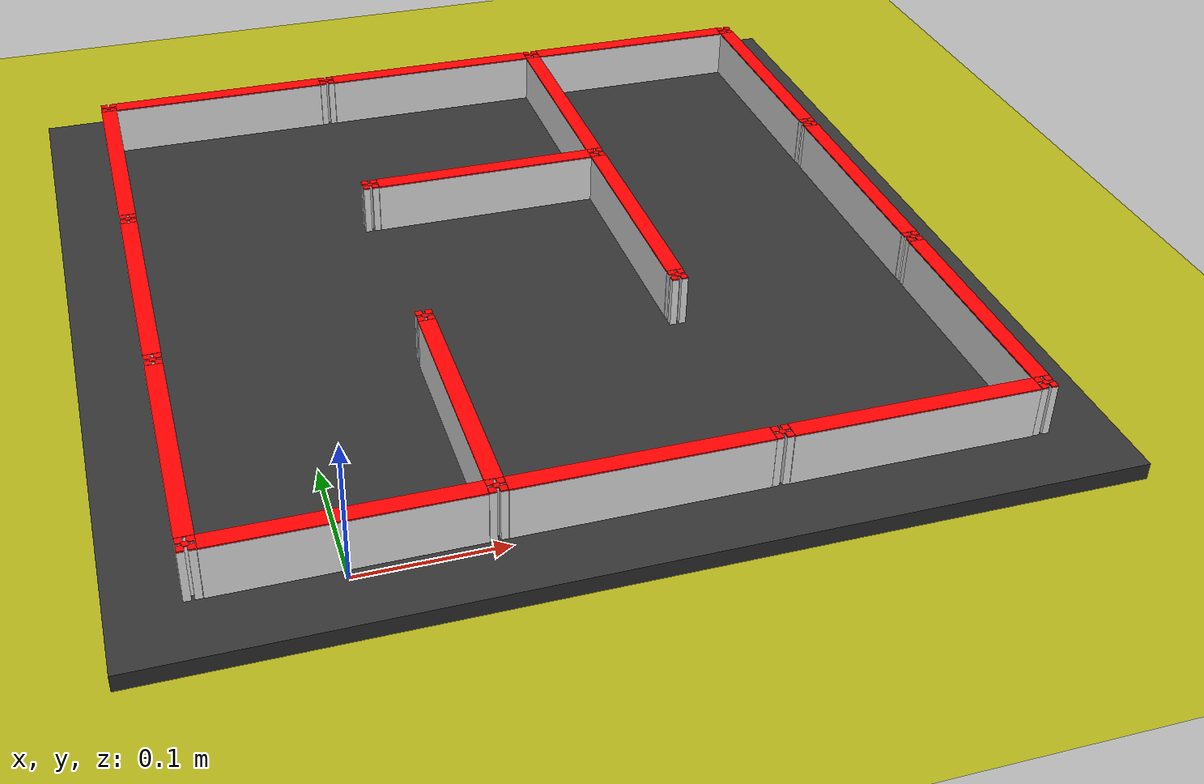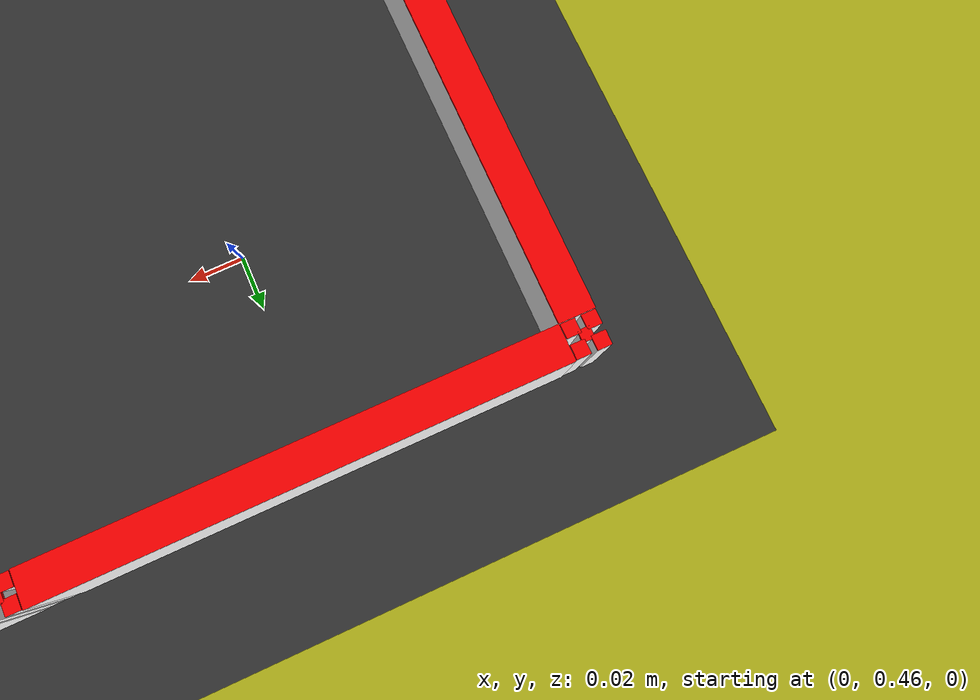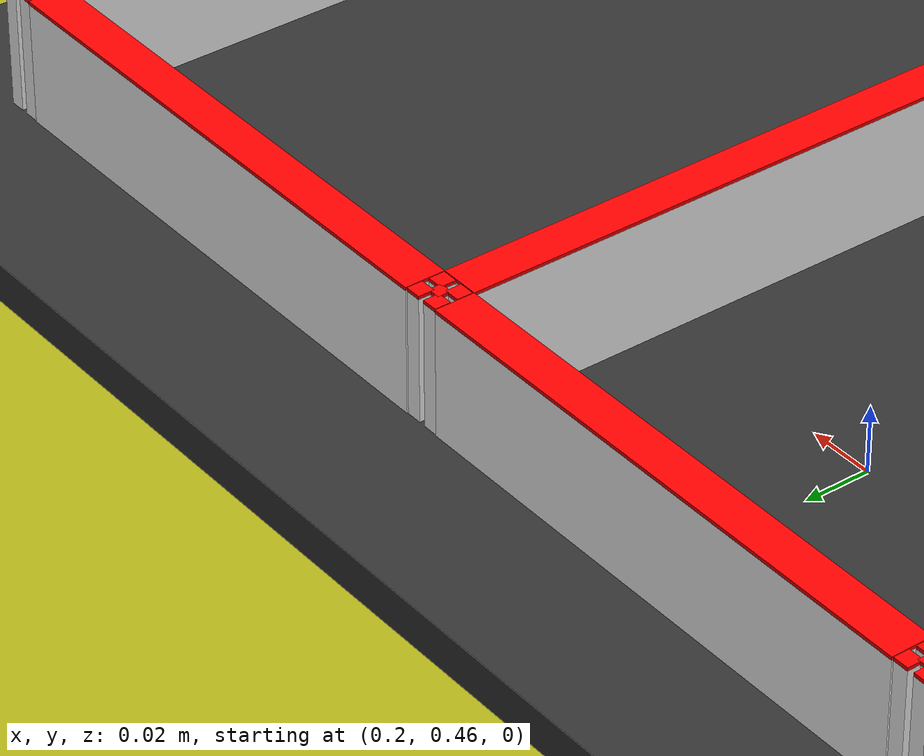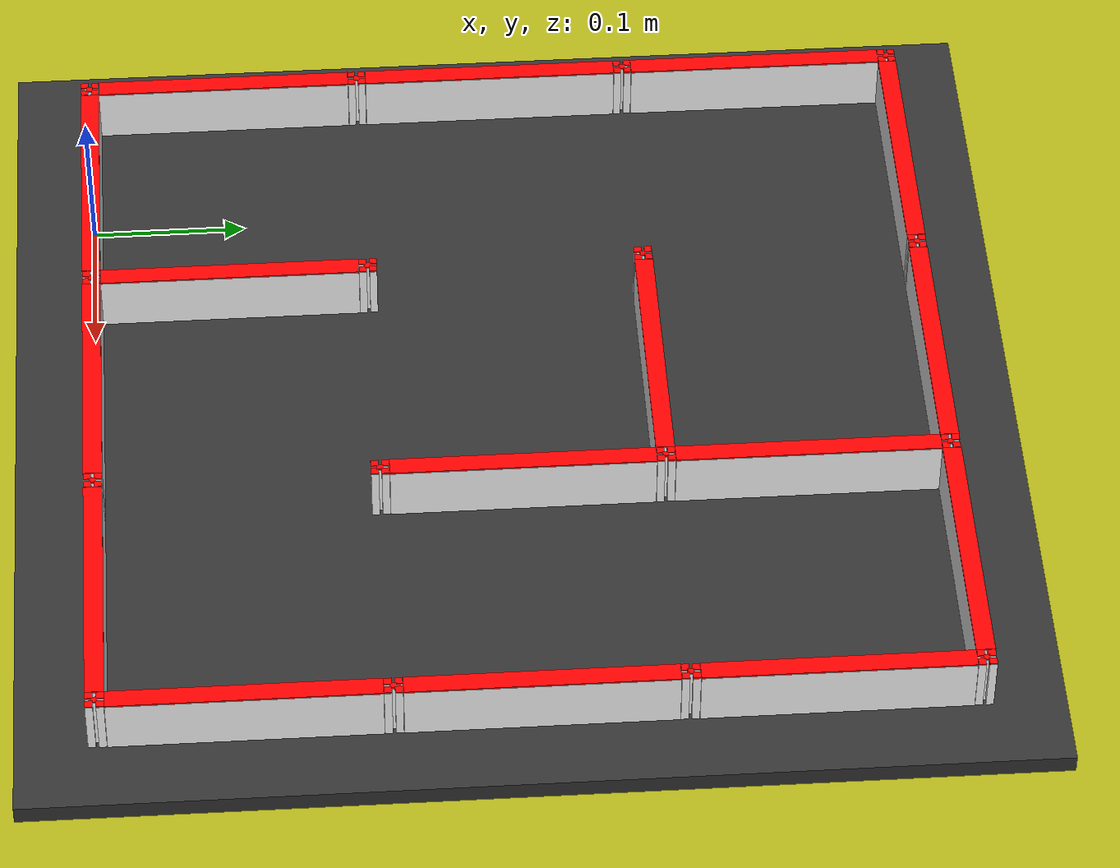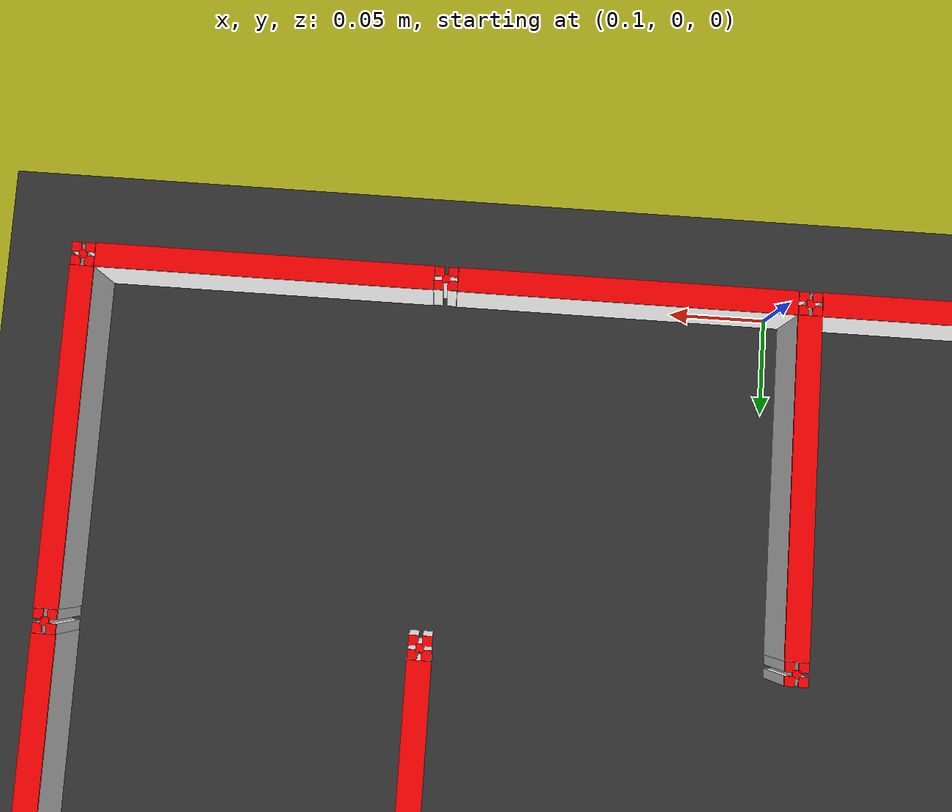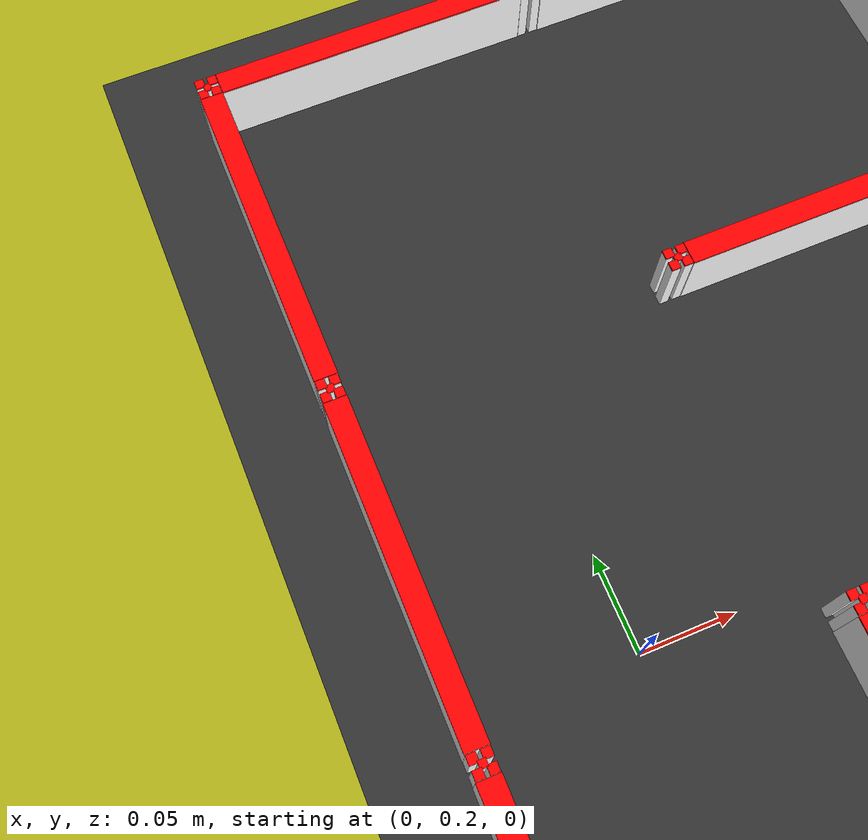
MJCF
<mujoco>
    <worldbody>
        <light diffuse=".5 .5 .5" pos="0 0 10" dir="0 0 -1"/>
        <geom type="plane" size="0 0 0.18" rgba="0.7 0.7 0.1 1"/>
        <!--ベース板-->
        <body name="base_plate" pos="0.18 0.27 0.006">
            <geom type="box" mass="0.1" size="0.321 0.321 0.006" rgba="0.2 0.2 0.2 1"/>
        </body>
        <body name="wall1" pos="0 0 0.025"  euler="0 0 0">
            <body pos="0 0 -0.0005">
                <geom type="box" mass="0.1" size="0.084 0.006 0.0245" rgba="1 1 1 1"/>
            </body>
            <body pos="0 0 0.0245">
                <geom type="box" mass="0.001" size="0.084 0.006 0.0005" rgba="1 0 0 1"/>
            </body>
        </body>
        <body name="wall2" pos="0.18 0 0.025" euler="0 0 0">
            <body pos="0 0 -0.0005">
                <geom type="box" mass="0.1" size="0.084 0.006 0.0245" rgba="1 1 1 1"/>
            </body>
            <body pos="0 0 0.0245">
                <geom type="box" mass="0.001" size="0.084 0.006 0.0005" rgba="1 0 0 1"/>
            </body>
        </body>
        <body name="wall3" pos="0.36 0 0.025" euler="0 0 0">
            <body pos="0 0 -0.0005">
                <geom type="box" mass="0.1" size="0.084 0.006 0.0245" rgba="1 1 1 1"/>
            </body>
            <body pos="0 0 0.0245">
                <geom type="box" mass="0.001" size="0.084 0.006 0.0005" rgba="1 0 0 1"/>
            </body>
        </body>
        <body name="wall4" pos="0.45 0.09 0.025"  euler="0 0 90">
            <body pos="0 0 -0.0005">
                <geom type="box" mass="0.1" size="0.084 0.006 0.0245" rgba="1 1 1 1"/>
            </body>
            <body pos="0 0 0.0245">
                <geom type="box" mass="0.001" size="0.084 0.006 0.0005" rgba="1 0 0 1"/>
            </body>
        </body>
        <body name="wall5" pos="0.45 0.27 0.025" euler="0 0 90">
            <body pos="0 0 -0.0005">
                <geom type="box" mass="0.1" size="0.084 0.006 0.0245" rgba="1 1 1 1"/>
            </body>
            <body pos="0 0 0.0245">
                <geom type="box" mass="0.001" size="0.084 0.006 0.0005" rgba="1 0 0 1"/>
            </body>
        </body>
        <body name="wall6" pos="0.45 0.45 0.025" euler="0 0 90">
            <body pos="0 0 -0.0005">
                <geom type="box" mass="0.1" size="0.084 0.006 0.0245" rgba="1 1 1 1"/>
            </body>
            <body pos="0 0 0.0245">
                <geom type="box" mass="0.001" size="0.084 0.006 0.0005" rgba="1 0 0 1"/>
            </body>
        </body>
        <body name="wall7" pos="-0.090 0.09 0.025"  euler="0 0 90">
            <body pos="0 0 -0.0005">
                <geom type="box" mass="0.1" size="0.084 0.006 0.0245" rgba="1 1 1 1"/>
            </body>
            <body pos="0 0 0.0245">
                <geom type="box" mass="0.001" size="0.084 0.006 0.0005" rgba="1 0 0 1"/>
            </body>
        </body>
        <body name="wall8" pos="-0.090 0.27 0.025" euler="0 0 90">
            <body pos="0 0 -0.0005">
                <geom type="box" mass="0.1" size="0.084 0.006 0.0245" rgba="1 1 1 1"/>
            </body>
            <body pos="0 0 0.0245">
                <geom type="box" mass="0.001" size="0.084 0.006 0.0005" rgba="1 0 0 1"/>
            </body>
        </body>
        <body name="wall9" pos="-0.090 0.45 0.025" euler="0 0 90">
            <body pos="0 0 -0.0005">
                <geom type="box" mass="0.1" size="0.084 0.006 0.0245" rgba="1 1 1 1"/>
            </body>
            <body pos="0 0 0.0245">
                <geom type="box" mass="0.001" size="0.084 0.006 0.0005" rgba="1 0 0 1"/>
            </body>
        </body>
        <body name="wall10" pos="0 0.54 0.025"  euler="0 0 0">
            <body pos="0 0 -0.0005">
                <geom type="box" mass="0.1" size="0.084 0.006 0.0245" rgba="1 1 1 1"/>
            </body>
            <body pos="0 0 0.0245">
                <geom type="box" mass="0.001" size="0.084 0.006 0.0005" rgba="1 0 0 1"/>
            </body>
        </body>
        <body name="wall11" pos="0.18 0.54 0.025" euler="0 0 0">
            <body pos="0 0 -0.0005">
                <geom type="box" mass="0.1" size="0.084 0.006 0.0245" rgba="1 1 1 1"/>
            </body>
            <body pos="0 0 0.0245">
                <geom type="box" mass="0.001" size="0.084 0.006 0.0005" rgba="1 0 0 1"/>
            </body>
        </body>
        <body name="wall12" pos="0.36 0.54 0.025" euler="0 0 0">
            <body pos="0 0 -0.0005">
                <geom type="box" mass="0.1" size="0.084 0.006 0.0245" rgba="1 1 1 1"/>
            </body>
            <body pos="0 0 0.0245">
                <geom type="box" mass="0.001" size="0.084 0.006 0.0005" rgba="1 0 0 1"/>
            </body>
        </body>

        <body name="wall13" pos="0.09 0.09 0.025" euler="0 0 90">
            <body pos="0 0 -0.0005">
                <geom type="box" mass="0.1" size="0.084 0.006 0.0245" rgba="1 1 1 1"/>
            </body>
            <body pos="0 0 0.0245">
                <geom type="box" mass="0.001" size="0.084 0.006 0.0005" rgba="1 0 0 1"/>
            </body>
        </body>

        <body name="wall14" pos="0.27 0.45 0.025" euler="0 0 90">
            <body pos="0 0 -0.0005">
                <geom type="box" mass="0.1" size="0.084 0.006 0.0245" rgba="1 1 1 1"/>
            </body>
            <body pos="0 0 0.0245">
                <geom type="box" mass="0.001" size="0.084 0.006 0.0005" rgba="1 0 0 1"/>
            </body>
        </body>

        <body name="wall15" pos="0.18 0.36 0.025" euler="0 0 0">
            <body pos="0 0 -0.0005">
                <geom type="box" mass="0.1" size="0.084 0.006 0.0245" rgba="1 1 1 1"/>
            </body>
            <body pos="0 0 0.0245">
                <geom type="box" mass="0.001" size="0.084 0.006 0.0005" rgba="1 0 0 1"/>
            </body>
        </body>

        <body name="wall16" pos="0.27 0.27 0.025" euler="0 0 90">
            <body pos="0 0 -0.0005">
                <geom type="box" mass="0.1" size="0.084 0.006 0.0245" rgba="1 1 1 1"/>
            </body>
            <body pos="0 0 0.0245">
                <geom type="box" mass="0.001" size="0.084 0.006 0.0005" rgba="1 0 0 1"/>
            </body>
        </body>

        <body pos="-0.09 0 0.025">
            <body pos="0.003375 0.003375 -0.0005">
                <geom type="box" mass="0.01" size="0.002375 0.002375 0.0245" rgba="1 1 1 1"/>
            </body>
            <body pos="0.003375 -0.003375 -0.0005">
                <geom type="box" mass="0.01" size="0.002375 0.002375 0.0245" rgba="1 1 1 1"/>
            </body>
            <body pos="-0.003375 0.003375 -0.0005">
                <geom type="box" mass="0.01" size="0.002375 0.002375 0.0245" rgba="1 1 1 1"/>
            </body>
            <body pos="-0.003375 -0.003375 -0.0005">
                <geom type="box" mass="0.01" size="0.002375 0.002375 0.0245" rgba="1 1 1 1"/>
            </body>
            <body pos="0 0 -0.0005">
                <geom type="box" mass="0.01" size="0.002 0.002 0.0245" rgba="1 1 1 1"/>
            </body>
            <!--柱上赤蓋-->
            <body pos="0.003375 0.003375 0.0245">
                <geom type="box" mass="0.01" size="0.002375 0.002375 0.0005" rgba="1 0 0 1"/>
            </body>
            <body pos="0.003375 -0.003375 0.0245">
                <geom type="box" mass="0.01" size="0.002375 0.002375 0.0005" rgba="1 0 0 1"/>
            </body>
            <body pos="-0.003375 0.003375 0.0245">
                <geom type="box" mass="0.01" size="0.002375 0.002375 0.0005" rgba="1 0 0 1"/>
            </body>
            <body pos="-0.003375 -0.003375 0.0245">
                <geom type="box" mass="0.01" size="0.002375 0.002375 0.0005" rgba="1 0 0 1"/>
            </body>
            <body pos="0 0 0.0245">
                <geom type="box" mass="0.01" size="0.002 0.002 0.0005" rgba="1 0 0 1"/>
            </body>
        </body>
        <body pos="0.09 0 0.025">
            <body pos="0.003375 0.003375 -0.0005">
                <geom type="box" mass="0.01" size="0.002375 0.002375 0.0245" rgba="1 1 1 1"/>
            </body>
            <body pos="0.003375 -0.003375 -0.0005">
                <geom type="box" mass="0.01" size="0.002375 0.002375 0.0245" rgba="1 1 1 1"/>
            </body>
            <body pos="-0.003375 0.003375 -0.0005">
                <geom type="box" mass="0.01" size="0.002375 0.002375 0.0245" rgba="1 1 1 1"/>
            </body>
            <body pos="-0.003375 -0.003375 -0.0005">
                <geom type="box" mass="0.01" size="0.002375 0.002375 0.0245" rgba="1 1 1 1"/>
            </body>
            <body pos="0 0 -0.0005">
                <geom type="box" mass="0.01" size="0.002 0.002 0.0245" rgba="1 1 1 1"/>
            </body>
            <!--柱上赤蓋-->
            <body pos="0.003375 0.003375 0.0245">
                <geom type="box" mass="0.01" size="0.002375 0.002375 0.0005" rgba="1 0 0 1"/>
            </body>
            <body pos="0.003375 -0.003375 0.0245">
                <geom type="box" mass="0.01" size="0.002375 0.002375 0.0005" rgba="1 0 0 1"/>
            </body>
            <body pos="-0.003375 0.003375 0.0245">
                <geom type="box" mass="0.01" size="0.002375 0.002375 0.0005" rgba="1 0 0 1"/>
            </body>
            <body pos="-0.003375 -0.003375 0.0245">
                <geom type="box" mass="0.01" size="0.002375 0.002375 0.0005" rgba="1 0 0 1"/>
            </body>
            <body pos="0 0 0.0245">
                <geom type="box" mass="0.01" size="0.002 0.002 0.0005" rgba="1 0 0 1"/>
            </body>
        </body>
        <body pos="0.27 0 0.025">
            <body pos="0.003375 0.003375 -0.0005">
                <geom type="box" mass="0.01" size="0.002375 0.002375 0.0245" rgba="1 1 1 1"/>
            </body>
            <body pos="0.003375 -0.003375 -0.0005">
                <geom type="box" mass="0.01" size="0.002375 0.002375 0.0245" rgba="1 1 1 1"/>
            </body>
            <body pos="-0.003375 0.003375 -0.0005">
                <geom type="box" mass="0.01" size="0.002375 0.002375 0.0245" rgba="1 1 1 1"/>
            </body>
            <body pos="-0.003375 -0.003375 -0.0005">
                <geom type="box" mass="0.01" size="0.002375 0.002375 0.0245" rgba="1 1 1 1"/>
            </body>
            <body pos="0 0 -0.0005">
                <geom type="box" mass="0.01" size="0.002 0.002 0.0245" rgba="1 1 1 1"/>
            </body>
            <!--柱上赤蓋-->
            <body pos="0.003375 0.003375 0.0245">
                <geom type="box" mass="0.01" size="0.002375 0.002375 0.0005" rgba="1 0 0 1"/>
            </body>
            <body pos="0.003375 -0.003375 0.0245">
                <geom type="box" mass="0.01" size="0.002375 0.002375 0.0005" rgba="1 0 0 1"/>
            </body>
            <body pos="-0.003375 0.003375 0.0245">
                <geom type="box" mass="0.01" size="0.002375 0.002375 0.0005" rgba="1 0 0 1"/>
            </body>
            <body pos="-0.003375 -0.003375 0.0245">
                <geom type="box" mass="0.01" size="0.002375 0.002375 0.0005" rgba="1 0 0 1"/>
            </body>
            <body pos="0 0 0.0245">
                <geom type="box" mass="0.01" size="0.002 0.002 0.0005" rgba="1 0 0 1"/>
            </body>
        </body>
        <body pos="0.45 0 0.025">
            <body pos="0.003375 0.003375 -0.0005">
                <geom type="box" mass="0.01" size="0.002375 0.002375 0.0245" rgba="1 1 1 1"/>
            </body>
            <body pos="0.003375 -0.003375 -0.0005">
                <geom type="box" mass="0.01" size="0.002375 0.002375 0.0245" rgba="1 1 1 1"/>
            </body>
            <body pos="-0.003375 0.003375 -0.0005">
                <geom type="box" mass="0.01" size="0.002375 0.002375 0.0245" rgba="1 1 1 1"/>
            </body>
            <body pos="-0.003375 -0.003375 -0.0005">
                <geom type="box" mass="0.01" size="0.002375 0.002375 0.0245" rgba="1 1 1 1"/>
            </body>
            <body pos="0 0 -0.0005">
                <geom type="box" mass="0.01" size="0.002 0.002 0.0245" rgba="1 1 1 1"/>
            </body>
            <!--柱上赤蓋-->
            <body pos="0.003375 0.003375 0.0245">
                <geom type="box" mass="0.01" size="0.002375 0.002375 0.0005" rgba="1 0 0 1"/>
            </body>
            <body pos="0.003375 -0.003375 0.0245">
                <geom type="box" mass="0.01" size="0.002375 0.002375 0.0005" rgba="1 0 0 1"/>
            </body>
            <body pos="-0.003375 0.003375 0.0245">
                <geom type="box" mass="0.01" size="0.002375 0.002375 0.0005" rgba="1 0 0 1"/>
            </body>
            <body pos="-0.003375 -0.003375 0.0245">
                <geom type="box" mass="0.01" size="0.002375 0.002375 0.0005" rgba="1 0 0 1"/>
            </body>
            <body pos="0 0 0.0245">
                <geom type="box" mass="0.01" size="0.002 0.002 0.0005" rgba="1 0 0 1"/>
            </body>
        </body>

        <body pos="-0.09 0.18 0.025">
            <body pos="0.003375 0.003375 -0.0005">
                <geom type="box" mass="0.01" size="0.002375 0.002375 0.0245" rgba="1 1 1 1"/>
            </body>
            <body pos="0.003375 -0.003375 -0.0005">
                <geom type="box" mass="0.01" size="0.002375 0.002375 0.0245" rgba="1 1 1 1"/>
            </body>
            <body pos="-0.003375 0.003375 -0.0005">
                <geom type="box" mass="0.01" size="0.002375 0.002375 0.0245" rgba="1 1 1 1"/>
            </body>
            <body pos="-0.003375 -0.003375 -0.0005">
                <geom type="box" mass="0.01" size="0.002375 0.002375 0.0245" rgba="1 1 1 1"/>
            </body>
            <body pos="0 0 -0.0005">
                <geom type="box" mass="0.01" size="0.002 0.002 0.0245" rgba="1 1 1 1"/>
            </body>
            <!--柱上赤蓋-->
            <body pos="0.003375 0.003375 0.0245">
                <geom type="box" mass="0.01" size="0.002375 0.002375 0.0005" rgba="1 0 0 1"/>
            </body>
            <body pos="0.003375 -0.003375 0.0245">
                <geom type="box" mass="0.01" size="0.002375 0.002375 0.0005" rgba="1 0 0 1"/>
            </body>
            <body pos="-0.003375 0.003375 0.0245">
                <geom type="box" mass="0.01" size="0.002375 0.002375 0.0005" rgba="1 0 0 1"/>
            </body>
            <body pos="-0.003375 -0.003375 0.0245">
                <geom type="box" mass="0.01" size="0.002375 0.002375 0.0005" rgba="1 0 0 1"/>
            </body>
            <body pos="0 0 0.0245">
                <geom type="box" mass="0.01" size="0.002 0.002 0.0005" rgba="1 0 0 1"/>
            </body>
        </body>
        <body pos="0.09 0.18 0.025">
            <body pos="0.003375 0.003375 -0.0005">
                <geom type="box" mass="0.01" size="0.002375 0.002375 0.0245" rgba="1 1 1 1"/>
            </body>
            <body pos="0.003375 -0.003375 -0.0005">
                <geom type="box" mass="0.01" size="0.002375 0.002375 0.0245" rgba="1 1 1 1"/>
            </body>
            <body pos="-0.003375 0.003375 -0.0005">
                <geom type="box" mass="0.01" size="0.002375 0.002375 0.0245" rgba="1 1 1 1"/>
            </body>
            <body pos="-0.003375 -0.003375 -0.0005">
                <geom type="box" mass="0.01" size="0.002375 0.002375 0.0245" rgba="1 1 1 1"/>
            </body>
            <body pos="0 0 -0.0005">
                <geom type="box" mass="0.01" size="0.002 0.002 0.0245" rgba="1 1 1 1"/>
            </body>
            <!--柱上赤蓋-->
            <body pos="0.003375 0.003375 0.0245">
                <geom type="box" mass="0.01" size="0.002375 0.002375 0.0005" rgba="1 0 0 1"/>
            </body>
            <body pos="0.003375 -0.003375 0.0245">
                <geom type="box" mass="0.01" size="0.002375 0.002375 0.0005" rgba="1 0 0 1"/>
            </body>
            <body pos="-0.003375 0.003375 0.0245">
                <geom type="box" mass="0.01" size="0.002375 0.002375 0.0005" rgba="1 0 0 1"/>
            </body>
            <body pos="-0.003375 -0.003375 0.0245">
                <geom type="box" mass="0.01" size="0.002375 0.002375 0.0005" rgba="1 0 0 1"/>
            </body>
            <body pos="0 0 0.0245">
                <geom type="box" mass="0.01" size="0.002 0.002 0.0005" rgba="1 0 0 1"/>
            </body>
        </body>
        <body pos="0.27 0.18 0.025">
            <body pos="0.003375 0.003375 -0.0005">
                <geom type="box" mass="0.01" size="0.002375 0.002375 0.0245" rgba="1 1 1 1"/>
            </body>
            <body pos="0.003375 -0.003375 -0.0005">
                <geom type="box" mass="0.01" size="0.002375 0.002375 0.0245" rgba="1 1 1 1"/>
            </body>
            <body pos="-0.003375 0.003375 -0.0005">
                <geom type="box" mass="0.01" size="0.002375 0.002375 0.0245" rgba="1 1 1 1"/>
            </body>
            <body pos="-0.003375 -0.003375 -0.0005">
                <geom type="box" mass="0.01" size="0.002375 0.002375 0.0245" rgba="1 1 1 1"/>
            </body>
            <body pos="0 0 -0.0005">
                <geom type="box" mass="0.01" size="0.002 0.002 0.0245" rgba="1 1 1 1"/>
            </body>
            <!--柱上赤蓋-->
            <body pos="0.003375 0.003375 0.0245">
                <geom type="box" mass="0.01" size="0.002375 0.002375 0.0005" rgba="1 0 0 1"/>
            </body>
            <body pos="0.003375 -0.003375 0.0245">
                <geom type="box" mass="0.01" size="0.002375 0.002375 0.0005" rgba="1 0 0 1"/>
            </body>
            <body pos="-0.003375 0.003375 0.0245">
                <geom type="box" mass="0.01" size="0.002375 0.002375 0.0005" rgba="1 0 0 1"/>
            </body>
            <body pos="-0.003375 -0.003375 0.0245">
                <geom type="box" mass="0.01" size="0.002375 0.002375 0.0005" rgba="1 0 0 1"/>
            </body>
            <body pos="0 0 0.0245">
                <geom type="box" mass="0.01" size="0.002 0.002 0.0005" rgba="1 0 0 1"/>
            </body>
        </body>
        <body pos="0.45 0.18 0.025">
            <body pos="0.003375 0.003375 -0.0005">
                <geom type="box" mass="0.01" size="0.002375 0.002375 0.0245" rgba="1 1 1 1"/>
            </body>
            <body pos="0.003375 -0.003375 -0.0005">
                <geom type="box" mass="0.01" size="0.002375 0.002375 0.0245" rgba="1 1 1 1"/>
            </body>
            <body pos="-0.003375 0.003375 -0.0005">
                <geom type="box" mass="0.01" size="0.002375 0.002375 0.0245" rgba="1 1 1 1"/>
            </body>
            <body pos="-0.003375 -0.003375 -0.0005">
                <geom type="box" mass="0.01" size="0.002375 0.002375 0.0245" rgba="1 1 1 1"/>
            </body>
            <body pos="0 0 -0.0005">
                <geom type="box" mass="0.01" size="0.002 0.002 0.0245" rgba="1 1 1 1"/>
            </body>
            <!--柱上赤蓋-->
            <body pos="0.003375 0.003375 0.0245">
                <geom type="box" mass="0.01" size="0.002375 0.002375 0.0005" rgba="1 0 0 1"/>
            </body>
            <body pos="0.003375 -0.003375 0.0245">
                <geom type="box" mass="0.01" size="0.002375 0.002375 0.0005" rgba="1 0 0 1"/>
            </body>
            <body pos="-0.003375 0.003375 0.0245">
                <geom type="box" mass="0.01" size="0.002375 0.002375 0.0005" rgba="1 0 0 1"/>
            </body>
            <body pos="-0.003375 -0.003375 0.0245">
                <geom type="box" mass="0.01" size="0.002375 0.002375 0.0005" rgba="1 0 0 1"/>
            </body>
            <body pos="0 0 0.0245">
                <geom type="box" mass="0.01" size="0.002 0.002 0.0005" rgba="1 0 0 1"/>
            </body>
        </body>

        <body pos="-0.09 0.36 0.025">
            <body pos="0.003375 0.003375 -0.0005">
                <geom type="box" mass="0.01" size="0.002375 0.002375 0.0245" rgba="1 1 1 1"/>
            </body>
            <body pos="0.003375 -0.003375 -0.0005">
                <geom type="box" mass="0.01" size="0.002375 0.002375 0.0245" rgba="1 1 1 1"/>
            </body>
            <body pos="-0.003375 0.003375 -0.0005">
                <geom type="box" mass="0.01" size="0.002375 0.002375 0.0245" rgba="1 1 1 1"/>
            </body>
            <body pos="-0.003375 -0.003375 -0.0005">
                <geom type="box" mass="0.01" size="0.002375 0.002375 0.0245" rgba="1 1 1 1"/>
            </body>
            <body pos="0 0 -0.0005">
                <geom type="box" mass="0.01" size="0.002 0.002 0.0245" rgba="1 1 1 1"/>
            </body>
            <!--柱上赤蓋-->
            <body pos="0.003375 0.003375 0.0245">
                <geom type="box" mass="0.01" size="0.002375 0.002375 0.0005" rgba="1 0 0 1"/>
            </body>
            <body pos="0.003375 -0.003375 0.0245">
                <geom type="box" mass="0.01" size="0.002375 0.002375 0.0005" rgba="1 0 0 1"/>
            </body>
            <body pos="-0.003375 0.003375 0.0245">
                <geom type="box" mass="0.01" size="0.002375 0.002375 0.0005" rgba="1 0 0 1"/>
            </body>
            <body pos="-0.003375 -0.003375 0.0245">
                <geom type="box" mass="0.01" size="0.002375 0.002375 0.0005" rgba="1 0 0 1"/>
            </body>
            <body pos="0 0 0.0245">
                <geom type="box" mass="0.01" size="0.002 0.002 0.0005" rgba="1 0 0 1"/>
            </body>
        </body>
        <body pos="0.09 0.36 0.025">
            <body pos="0.003375 0.003375 -0.0005">
                <geom type="box" mass="0.01" size="0.002375 0.002375 0.0245" rgba="1 1 1 1"/>
            </body>
            <body pos="0.003375 -0.003375 -0.0005">
                <geom type="box" mass="0.01" size="0.002375 0.002375 0.0245" rgba="1 1 1 1"/>
            </body>
            <body pos="-0.003375 0.003375 -0.0005">
                <geom type="box" mass="0.01" size="0.002375 0.002375 0.0245" rgba="1 1 1 1"/>
            </body>
            <body pos="-0.003375 -0.003375 -0.0005">
                <geom type="box" mass="0.01" size="0.002375 0.002375 0.0245" rgba="1 1 1 1"/>
            </body>
            <body pos="0 0 -0.0005">
                <geom type="box" mass="0.01" size="0.002 0.002 0.0245" rgba="1 1 1 1"/>
            </body>
            <!--柱上赤蓋-->
            <body pos="0.003375 0.003375 0.0245">
                <geom type="box" mass="0.01" size="0.002375 0.002375 0.0005" rgba="1 0 0 1"/>
            </body>
            <body pos="0.003375 -0.003375 0.0245">
                <geom type="box" mass="0.01" size="0.002375 0.002375 0.0005" rgba="1 0 0 1"/>
            </body>
            <body pos="-0.003375 0.003375 0.0245">
                <geom type="box" mass="0.01" size="0.002375 0.002375 0.0005" rgba="1 0 0 1"/>
            </body>
            <body pos="-0.003375 -0.003375 0.0245">
                <geom type="box" mass="0.01" size="0.002375 0.002375 0.0005" rgba="1 0 0 1"/>
            </body>
            <body pos="0 0 0.0245">
                <geom type="box" mass="0.01" size="0.002 0.002 0.0005" rgba="1 0 0 1"/>
            </body>
        </body>
        <body pos="0.27 0.36 0.025">
            <body pos="0.003375 0.003375 -0.0005">
                <geom type="box" mass="0.01" size="0.002375 0.002375 0.0245" rgba="1 1 1 1"/>
            </body>
            <body pos="0.003375 -0.003375 -0.0005">
                <geom type="box" mass="0.01" size="0.002375 0.002375 0.0245" rgba="1 1 1 1"/>
            </body>
            <body pos="-0.003375 0.003375 -0.0005">
                <geom type="box" mass="0.01" size="0.002375 0.002375 0.0245" rgba="1 1 1 1"/>
            </body>
            <body pos="-0.003375 -0.003375 -0.0005">
                <geom type="box" mass="0.01" size="0.002375 0.002375 0.0245" rgba="1 1 1 1"/>
            </body>
            <body pos="0 0 -0.0005">
                <geom type="box" mass="0.01" size="0.002 0.002 0.0245" rgba="1 1 1 1"/>
            </body>
            <!--柱上赤蓋-->
            <body pos="0.003375 0.003375 0.0245">
                <geom type="box" mass="0.01" size="0.002375 0.002375 0.0005" rgba="1 0 0 1"/>
            </body>
            <body pos="0.003375 -0.003375 0.0245">
                <geom type="box" mass="0.01" size="0.002375 0.002375 0.0005" rgba="1 0 0 1"/>
            </body>
            <body pos="-0.003375 0.003375 0.0245">
                <geom type="box" mass="0.01" size="0.002375 0.002375 0.0005" rgba="1 0 0 1"/>
            </body>
            <body pos="-0.003375 -0.003375 0.0245">
                <geom type="box" mass="0.01" size="0.002375 0.002375 0.0005" rgba="1 0 0 1"/>
            </body>
            <body pos="0 0 0.0245">
                <geom type="box" mass="0.01" size="0.002 0.002 0.0005" rgba="1 0 0 1"/>
            </body>
        </body>
        <body pos="0.45 0.36 0.025">
            <body pos="0.003375 0.003375 -0.0005">
                <geom type="box" mass="0.01" size="0.002375 0.002375 0.0245" rgba="1 1 1 1"/>
            </body>
            <body pos="0.003375 -0.003375 -0.0005">
                <geom type="box" mass="0.01" size="0.002375 0.002375 0.0245" rgba="1 1 1 1"/>
            </body>
            <body pos="-0.003375 0.003375 -0.0005">
                <geom type="box" mass="0.01" size="0.002375 0.002375 0.0245" rgba="1 1 1 1"/>
            </body>
            <body pos="-0.003375 -0.003375 -0.0005">
                <geom type="box" mass="0.01" size="0.002375 0.002375 0.0245" rgba="1 1 1 1"/>
            </body>
            <body pos="0 0 -0.0005">
                <geom type="box" mass="0.01" size="0.002 0.002 0.0245" rgba="1 1 1 1"/>
            </body>
            <!--柱上赤蓋-->
            <body pos="0.003375 0.003375 0.0245">
                <geom type="box" mass="0.01" size="0.002375 0.002375 0.0005" rgba="1 0 0 1"/>
            </body>
            <body pos="0.003375 -0.003375 0.0245">
                <geom type="box" mass="0.01" size="0.002375 0.002375 0.0005" rgba="1 0 0 1"/>
            </body>
            <body pos="-0.003375 0.003375 0.0245">
                <geom type="box" mass="0.01" size="0.002375 0.002375 0.0005" rgba="1 0 0 1"/>
            </body>
            <body pos="-0.003375 -0.003375 0.0245">
                <geom type="box" mass="0.01" size="0.002375 0.002375 0.0005" rgba="1 0 0 1"/>
            </body>
            <body pos="0 0 0.0245">
                <geom type="box" mass="0.01" size="0.002 0.002 0.0005" rgba="1 0 0 1"/>
            </body>
        </body>

        <body pos="-0.09 0.54 0.025">
            <body pos="0.003375 0.003375 -0.0005">
                <geom type="box" mass="0.01" size="0.002375 0.002375 0.0245" rgba="1 1 1 1"/>
            </body>
            <body pos="0.003375 -0.003375 -0.0005">
                <geom type="box" mass="0.01" size="0.002375 0.002375 0.0245" rgba="1 1 1 1"/>
            </body>
            <body pos="-0.003375 0.003375 -0.0005">
                <geom type="box" mass="0.01" size="0.002375 0.002375 0.0245" rgba="1 1 1 1"/>
            </body>
            <body pos="-0.003375 -0.003375 -0.0005">
                <geom type="box" mass="0.01" size="0.002375 0.002375 0.0245" rgba="1 1 1 1"/>
            </body>
            <body pos="0 0 -0.0005">
                <geom type="box" mass="0.01" size="0.002 0.002 0.0245" rgba="1 1 1 1"/>
            </body>
            <!--柱上赤蓋-->
            <body pos="0.003375 0.003375 0.0245">
                <geom type="box" mass="0.01" size="0.002375 0.002375 0.0005" rgba="1 0 0 1"/>
            </body>
            <body pos="0.003375 -0.003375 0.0245">
                <geom type="box" mass="0.01" size="0.002375 0.002375 0.0005" rgba="1 0 0 1"/>
            </body>
            <body pos="-0.003375 0.003375 0.0245">
                <geom type="box" mass="0.01" size="0.002375 0.002375 0.0005" rgba="1 0 0 1"/>
            </body>
            <body pos="-0.003375 -0.003375 0.0245">
                <geom type="box" mass="0.01" size="0.002375 0.002375 0.0005" rgba="1 0 0 1"/>
            </body>
            <body pos="0 0 0.0245">
                <geom type="box" mass="0.01" size="0.002 0.002 0.0005" rgba="1 0 0 1"/>
            </body>
        </body>
        <body pos="0.09 0.54 0.025">
            <body pos="0.003375 0.003375 -0.0005">
                <geom type="box" mass="0.01" size="0.002375 0.002375 0.0245" rgba="1 1 1 1"/>
            </body>
            <body pos="0.003375 -0.003375 -0.0005">
                <geom type="box" mass="0.01" size="0.002375 0.002375 0.0245" rgba="1 1 1 1"/>
            </body>
            <body pos="-0.003375 0.003375 -0.0005">
                <geom type="box" mass="0.01" size="0.002375 0.002375 0.0245" rgba="1 1 1 1"/>
            </body>
            <body pos="-0.003375 -0.003375 -0.0005">
                <geom type="box" mass="0.01" size="0.002375 0.002375 0.0245" rgba="1 1 1 1"/>
            </body>
            <body pos="0 0 -0.0005">
                <geom type="box" mass="0.01" size="0.002 0.002 0.0245" rgba="1 1 1 1"/>
            </body>
            <!--柱上赤蓋-->
            <body pos="0.003375 0.003375 0.0245">
                <geom type="box" mass="0.01" size="0.002375 0.002375 0.0005" rgba="1 0 0 1"/>
            </body>
            <body pos="0.003375 -0.003375 0.0245">
                <geom type="box" mass="0.01" size="0.002375 0.002375 0.0005" rgba="1 0 0 1"/>
            </body>
            <body pos="-0.003375 0.003375 0.0245">
                <geom type="box" mass="0.01" size="0.002375 0.002375 0.0005" rgba="1 0 0 1"/>
            </body>
            <body pos="-0.003375 -0.003375 0.0245">
                <geom type="box" mass="0.01" size="0.002375 0.002375 0.0005" rgba="1 0 0 1"/>
            </body>
            <body pos="0 0 0.0245">
                <geom type="box" mass="0.01" size="0.002 0.002 0.0005" rgba="1 0 0 1"/>
            </body>
        </body>
        <body pos="0.27 0.54 0.025">
            <body pos="0.003375 0.003375 -0.0005">
                <geom type="box" mass="0.01" size="0.002375 0.002375 0.0245" rgba="1 1 1 1"/>
            </body>
            <body pos="0.003375 -0.003375 -0.0005">
                <geom type="box" mass="0.01" size="0.002375 0.002375 0.0245" rgba="1 1 1 1"/>
            </body>
            <body pos="-0.003375 0.003375 -0.0005">
                <geom type="box" mass="0.01" size="0.002375 0.002375 0.0245" rgba="1 1 1 1"/>
            </body>
            <body pos="-0.003375 -0.003375 -0.0005">
                <geom type="box" mass="0.01" size="0.002375 0.002375 0.0245" rgba="1 1 1 1"/>
            </body>
            <body pos="0 0 -0.0005">
                <geom type="box" mass="0.01" size="0.002 0.002 0.0245" rgba="1 1 1 1"/>
            </body>
            <!--柱上赤蓋-->
            <body pos="0.003375 0.003375 0.0245">
                <geom type="box" mass="0.01" size="0.002375 0.002375 0.0005" rgba="1 0 0 1"/>
            </body>
            <body pos="0.003375 -0.003375 0.0245">
                <geom type="box" mass="0.01" size="0.002375 0.002375 0.0005" rgba="1 0 0 1"/>
            </body>
            <body pos="-0.003375 0.003375 0.0245">
                <geom type="box" mass="0.01" size="0.002375 0.002375 0.0005" rgba="1 0 0 1"/>
            </body>
            <body pos="-0.003375 -0.003375 0.0245">
                <geom type="box" mass="0.01" size="0.002375 0.002375 0.0005" rgba="1 0 0 1"/>
            </body>
            <body pos="0 0 0.0245">
                <geom type="box" mass="0.01" size="0.002 0.002 0.0005" rgba="1 0 0 1"/>
            </body>
        </body>
        <body pos="0.45 0.54 0.025">
            <body pos="0.003375 0.003375 -0.0005">
                <geom type="box" mass="0.01" size="0.002375 0.002375 0.0245" rgba="1 1 1 1"/>
            </body>
            <body pos="0.003375 -0.003375 -0.0005">
                <geom type="box" mass="0.01" size="0.002375 0.002375 0.0245" rgba="1 1 1 1"/>
            </body>
            <body pos="-0.003375 0.003375 -0.0005">
                <geom type="box" mass="0.01" size="0.002375 0.002375 0.0245" rgba="1 1 1 1"/>
            </body>
            <body pos="-0.003375 -0.003375 -0.0005">
                <geom type="box" mass="0.01" size="0.002375 0.002375 0.0245" rgba="1 1 1 1"/>
            </body>
            <body pos="0 0 -0.0005">
                <geom type="box" mass="0.01" size="0.002 0.002 0.0245" rgba="1 1 1 1"/>
            </body>
            <!--柱上赤蓋-->
            <body pos="0.003375 0.003375 0.0245">
                <geom type="box" mass="0.01" size="0.002375 0.002375 0.0005" rgba="1 0 0 1"/>
            </body>
            <body pos="0.003375 -0.003375 0.0245">
                <geom type="box" mass="0.01" size="0.002375 0.002375 0.0005" rgba="1 0 0 1"/>
            </body>
            <body pos="-0.003375 0.003375 0.0245">
                <geom type="box" mass="0.01" size="0.002375 0.002375 0.0005" rgba="1 0 0 1"/>
            </body>
            <body pos="-0.003375 -0.003375 0.0245">
                <geom type="box" mass="0.01" size="0.002375 0.002375 0.0005" rgba="1 0 0 1"/>
            </body>
            <body pos="0 0 0.0245">
                <geom type="box" mass="0.01" size="0.002 0.002 0.0005" rgba="1 0 0 1"/>
            </body>
        </body>
    </worldbody>
</mujoco>
